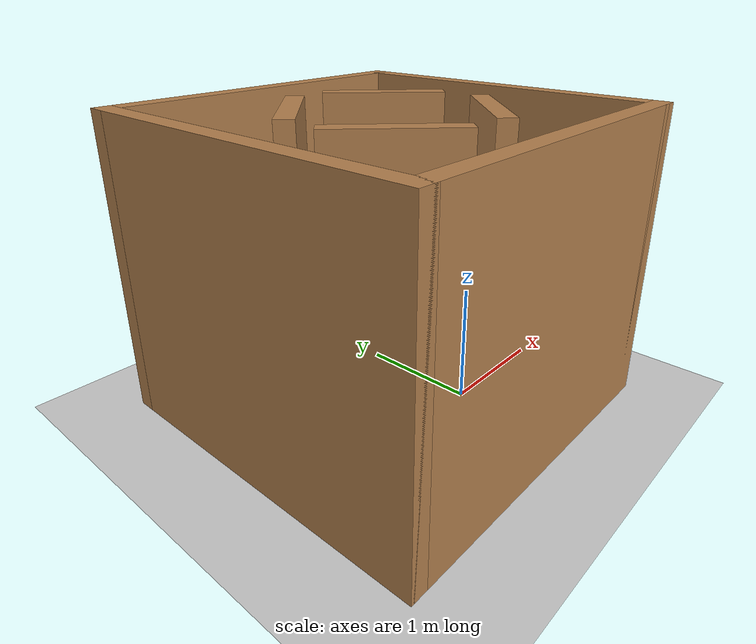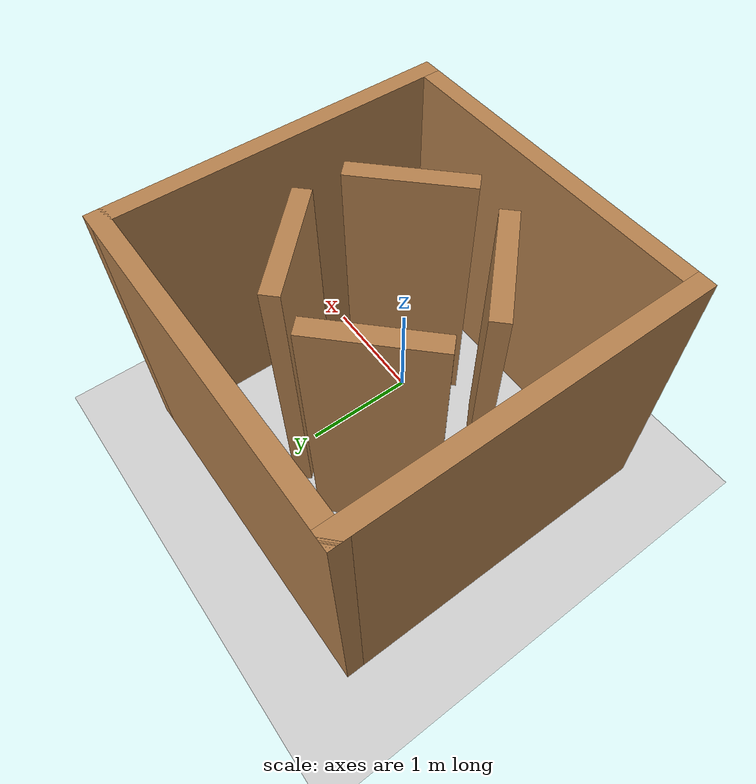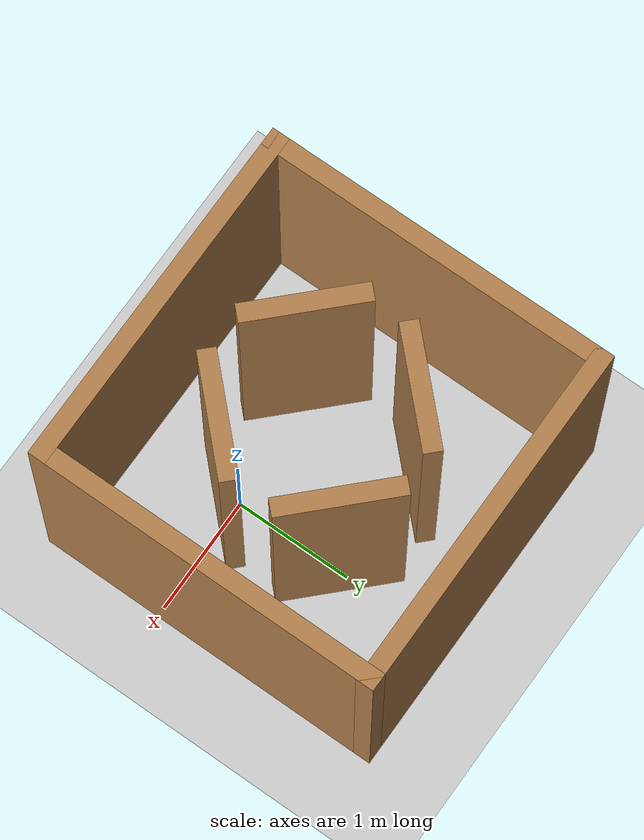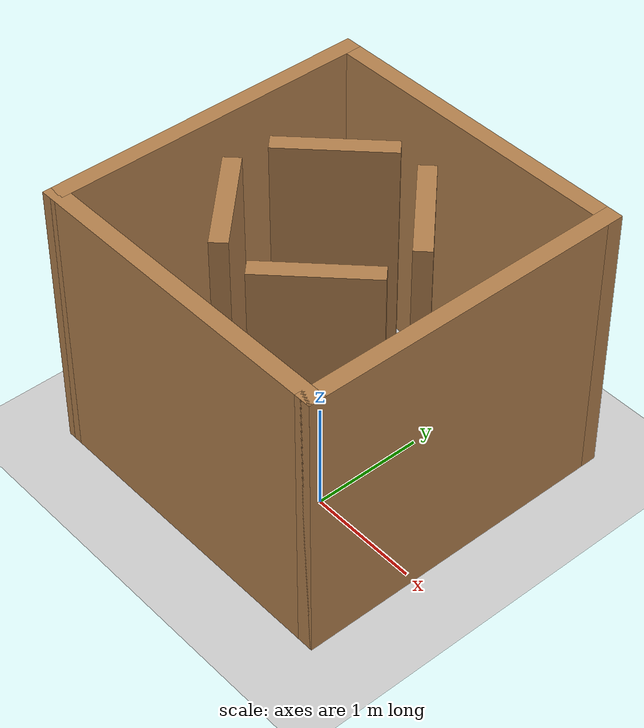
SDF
<sdf version="1.7">
 <world name="default">
  <light name="sun" type="directional">
   <pose>0 0 10 0 -0 0</pose>
   <diffuse>0.8 0.8 0.8 1</diffuse>
   <specular>0.2 0.2 0.2 1</specular>
   <attenuation>
    <range>1000</range>
    <constant>0.9</constant>
    <linear>0.01</linear>
    <quadratic>0.001</quadratic>
   </attenuation>
   <direction>-0.5 0.1 -0.9</direction>
   <spot><inner_angle>0</inner_angle><outer_angle>0</outer_angle><falloff>0</falloff></spot>
  </light>
  <model name="ground_plane">
   <static>1</static>
   <link name="link">
    <collision name="collision">
     <geometry><plane><normal>0 0 1</normal><size>100 100</size></plane></geometry>
     <surface>
      <contact><collide_bitmask>65535</collide_bitmask></contact>
      <friction><ode><mu>100</mu><mu2>50</mu2></ode></friction>
     </surface>
    </collision>
    <visual name="visual">
     <cast_shadows>0</cast_shadows>
     <geometry><plane><normal>0 0 1</normal><size>100 100</size></plane></geometry>
     <material>
      <script><uri>file://media/materials/scripts/gazebo.material</uri><name>Gazebo/Grey</name></script>
     </material>
    </visual>
   </link>
  </model>
  <gravity>0 0 -9.8</gravity>
  <magnetic_field>6e-06 2.3e-05 -4.2e-05</magnetic_field>
  <atmosphere type="adiabatic"/>
  <physics type="ode">
   <max_step_size>0.001</max_step_size>
   <real_time_factor>1</real_time_factor>
   <real_time_update_rate>1000</real_time_update_rate>
  </physics>
  <scene><ambient>0.4 0.4 0.4 1</ambient><background>0.7 0.7 0.7 1</background><shadows>1</shadows></scene>
  <audio><device>default</device></audio>
  <spherical_coordinates>
   <surface_model>EARTH_WGS84</surface_model>
   <latitude_deg>0</latitude_deg>
   <longitude_deg>0</longitude_deg>
   <elevation>0</elevation>
   <heading_deg>0</heading_deg>
  </spherical_coordinates>
  <model name="custom_world_1.WORLD">
   <pose>-0.417456 0.47198 0 0 -0 0</pose>
   <link name="Wall_10">
    <collision name="Wall_10_Collision">
     <geometry><box><size>3 0.15 2.5</size></box></geometry>
     <pose>0 0 1.25 0 -0 0</pose>
    </collision>
    <visual name="Wall_10_Visual">
     <pose>0 0 1.25 0 -0 0</pose>
     <geometry><box><size>3 0.15 2.5</size></box></geometry>
     <material>
      <script><uri>file://media/materials/scripts/gazebo.material</uri><name>Gazebo/Wood</name></script>
      <ambient>1 1 1 1</ambient>
     </material>
     <meta><layer>0</layer></meta>
    </visual>
    <pose>1.425 0 0 0 -0 1.5708</pose>
   </link>
   <link name="Wall_12">
    <collision name="Wall_12_Collision">
     <geometry><box><size>3 0.15 2.5</size></box></geometry>
     <pose>0 0 1.25 0 -0 0</pose>
    </collision>
    <visual name="Wall_12_Visual">
     <pose>0 0 1.25 0 -0 0</pose>
     <geometry><box><size>3 0.15 2.5</size></box></geometry>
     <material>
      <script><uri>file://media/materials/scripts/gazebo.material</uri><name>Gazebo/Wood</name></script>
      <ambient>1 1 1 1</ambient>
     </material>
     <meta><layer>0</layer></meta>
    </visual>
    <pose>-0 1.425 0 0 -0 3.14159</pose>
   </link>
   <link name="Wall_13">
    <collision name="Wall_13_Collision">
     <geometry><box><size>3 0.15 2.5</size></box></geometry>
     <pose>0 0 1.25 0 -0 0</pose>
    </collision>
    <visual name="Wall_13_Visual">
     <pose>0 0 1.25 0 -0 0</pose>
     <geometry><box><size>3 0.15 2.5</size></box></geometry>
     <material>
      <script><uri>file://media/materials/scripts/gazebo.material</uri><name>Gazebo/Wood</name></script>
      <ambient>1 1 1 1</ambient>
     </material>
     <meta><layer>0</layer></meta>
    </visual>
    <pose>-1.425 0 0 0 -0 -1.5708</pose>
   </link>
   <link name="Wall_14">
    <collision name="Wall_14_Collision">
     <geometry><box><size>3 0.15 2.5</size></box></geometry>
     <pose>0 0 1.25 0 -0 0</pose>
    </collision>
    <visual name="Wall_14_Visual">
     <pose>0 0 1.25 0 -0 0</pose>
     <geometry><box><size>3 0.15 2.5</size></box></geometry>
     <material>
      <script><uri>file://media/materials/scripts/gazebo.material</uri><name>Gazebo/Wood</name></script>
      <ambient>1 1 1 1</ambient>
     </material>
     <meta><layer>0</layer></meta>
    </visual>
    <pose>-0 -1.425 0 0 -0 0</pose>
   </link>
   <link name="Wall_16">
    <collision name="Wall_16_Collision">
     <geometry><box><size>1 0.15 2.5</size></box></geometry>
     <pose>0 0 1.25 0 -0 0</pose>
    </collision>
    <visual name="Wall_16_Visual">
     <pose>0 0 1.25 0 -0 0</pose>
     <geometry><box><size>1 0.15 2.5</size></box></geometry>
     <material>
      <script><uri>file://media/materials/scripts/gazebo.material</uri><name>Gazebo/Wood</name></script>
      <ambient>1 1 1 1</ambient>
     </material>
     <meta><layer>0</layer></meta>
    </visual>
    <pose>-0.51698 0.49702 0 0 -0 0.785398</pose>
   </link>
   <link name="Wall_18">
    <collision name="Wall_18_Collision">
     <geometry><box><size>1 0.15 2.5</size></box></geometry>
     <pose>0 0 1.25 0 -0 0</pose>
    </collision>
    <visual name="Wall_18_Visual">
     <pose>0 0 1.25 0 -0 0</pose>
     <geometry><box><size>1 0.15 2.5</size></box></geometry>
     <material>
      <script><uri>file://media/materials/scripts/gazebo.material</uri><name>Gazebo/Wood</name></script>
      <ambient>1 1 1 1</ambient>
     </material>
     <meta><layer>0</layer></meta>
    </visual>
    <pose>0.48352 0.49398 0 0 -0 -0.785398</pose>
   </link>
   <link name="Wall_20">
    <collision name="Wall_20_Collision">
     <geometry><box><size>1 0.15 2.5</size></box></geometry>
     <pose>0 0 1.25 0 -0 0</pose>
    </collision>
    <visual name="Wall_20_Visual">
     <pose>0 0 1.25 0 -0 0</pose>
     <geometry><box><size>1 0.15 2.5</size></box></geometry>
     <material>
      <script><uri>file://media/materials/scripts/gazebo.material</uri><name>Gazebo/Wood</name></script>
      <ambient>1 1 1 1</ambient>
     </material>
     <meta><layer>0</layer></meta>
    </visual>
    <pose>-0.55148 -0.54102 0 0 -0 -0.785398</pose>
   </link>
   <link name="Wall_22">
    <collision name="Wall_22_Collision">
     <geometry><box><size>1 0.15 2.5</size></box></geometry>
     <pose>0 0 1.25 0 -0 0</pose>
    </collision>
    <visual name="Wall_22_Visual">
     <pose>0 0 1.25 0 -0 0</pose>
     <geometry><box><size>1 0.15 2.5</size></box></geometry>
     <material>
      <script><uri>file://media/materials/scripts/gazebo.material</uri><name>Gazebo/Wood</name></script>
      <ambient>1 1 1 1</ambient>
     </material>
     <meta><layer>0</layer></meta>
    </visual>
    <pose>0.49198 -0.56402 0 0 -0 -2.35619</pose>
   </link>
   <static>1</static>
  </model>
 </world>
</sdf>
